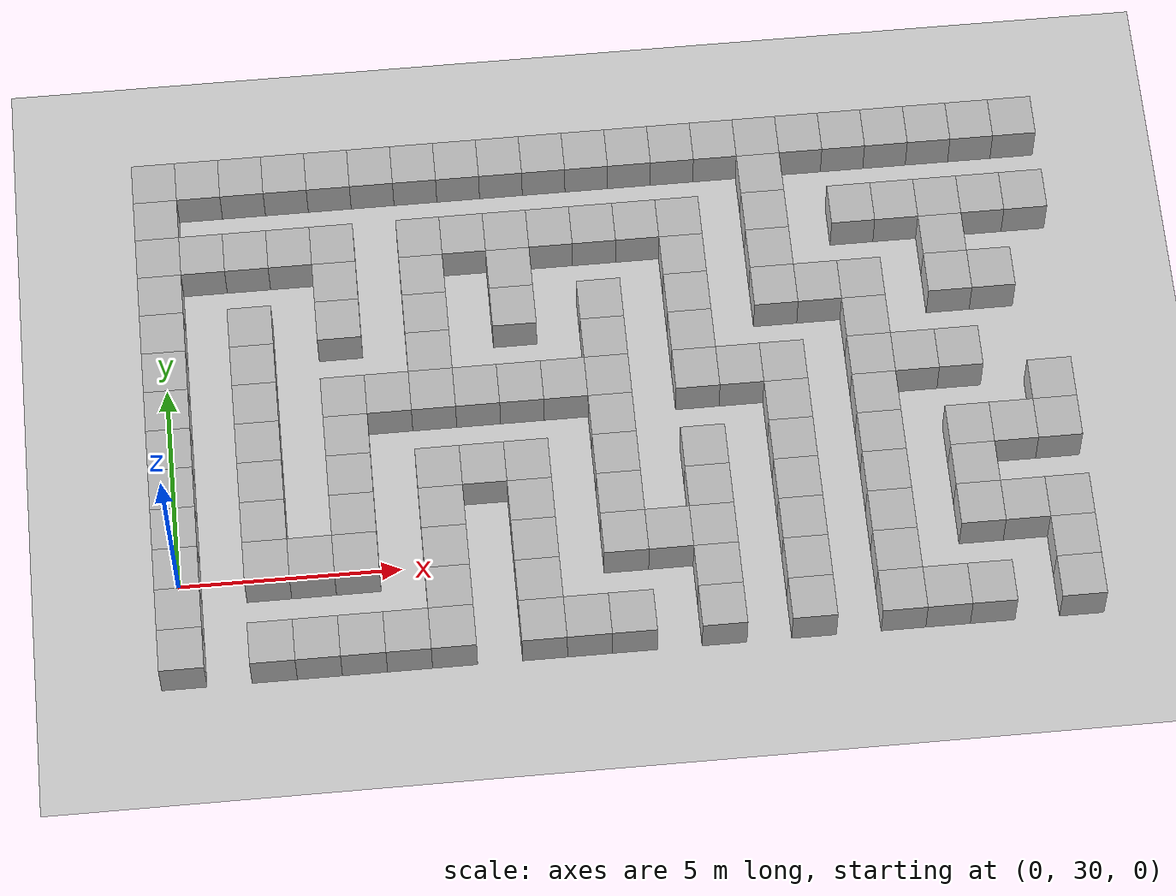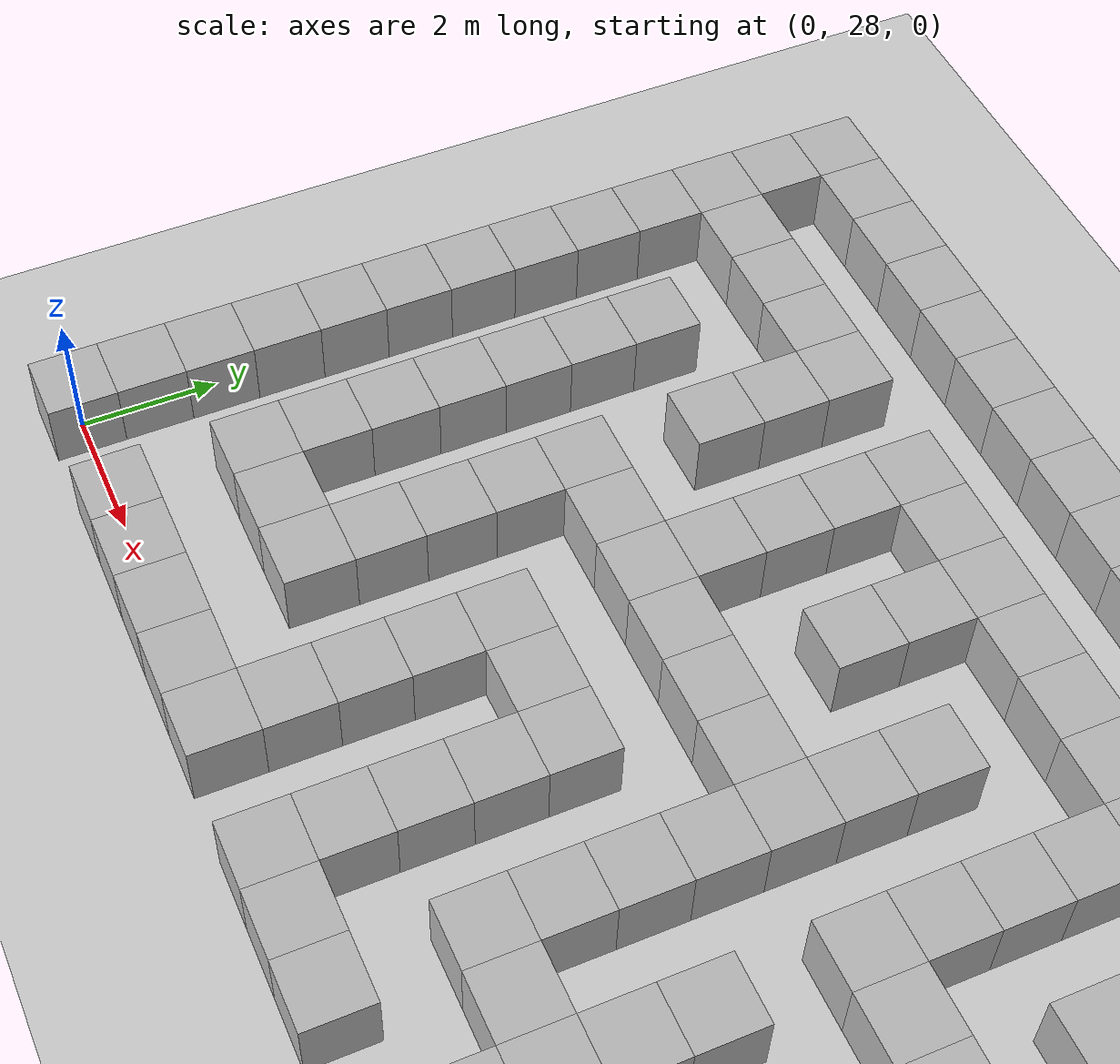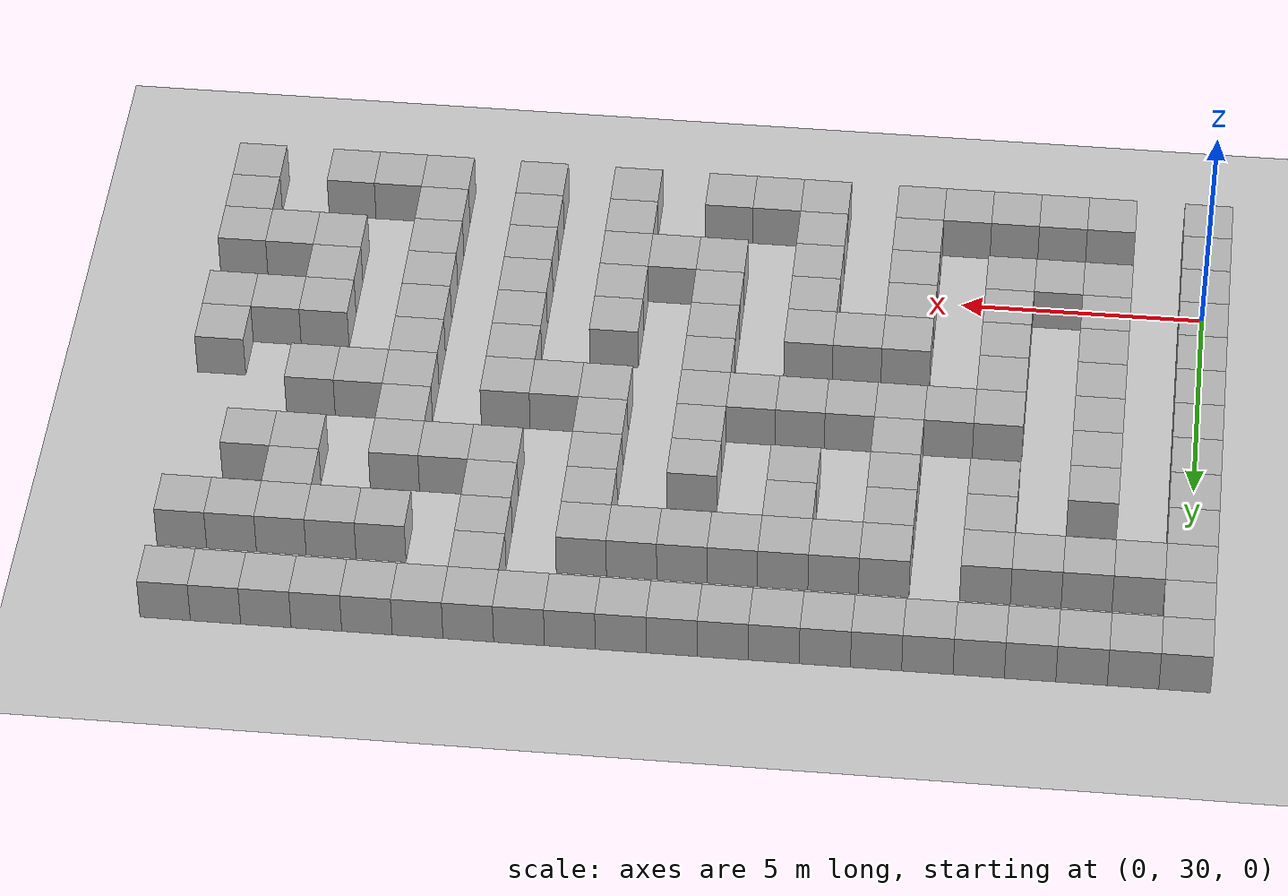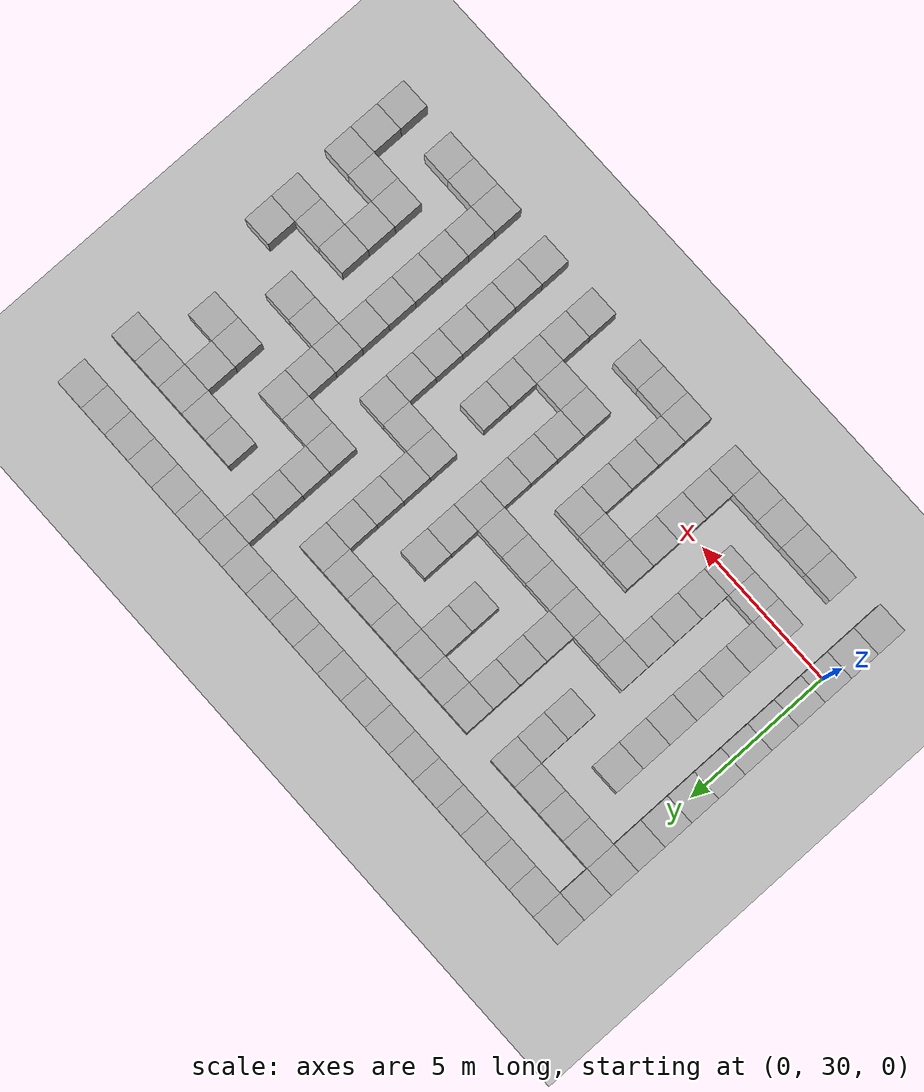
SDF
<sdf version="1.8">
 <world name="custom_maze">
  <model name="ground_plane">
   <static>1</static>
   <link name="link">
    <collision name="collision">
     <geometry><plane><normal>0 0 1</normal><size>100 100</size></plane></geometry>
    </collision>
    <visual name="visual">
     <geometry><plane><normal>0 0 1</normal><size>100 100</size></plane></geometry>
     <material>
      <ambient>0.8 0.8 0.8 1</ambient>
      <diffuse>0.8 0.8 0.8 1</diffuse>
      <specular>0.8 0.8 0.8 1</specular>
     </material>
     <plugin name="__default__" filename="__default__"/>
    </visual>
   </link>
   <plugin name="__default__" filename="__default__"/>
  </model>
  <model name="obstacles">
   <pose>0 0 0.5 0 0 0</pose>
   <static>true</static>
   <link name="wall11">
    <pose>18 30 0 0 0 0</pose>
    <static>true</static>
    <collision name="wall11_collision"><geometry><box><size>1 1 1</size></box></geometry></collision>
    <visual name="wall11_visual"><geometry><box><size>1 1 1</size></box></geometry></visual>
   </link>
   <link name="wall13">
    <pose>10 31 0 0 0 0</pose>
    <static>true</static>
    <collision name="wall13_collision"><geometry><box><size>1 1 1</size></box></geometry></collision>
    <visual name="wall13_visual"><geometry><box><size>1 1 1</size></box></geometry></visual>
   </link>
   <link name="wall17">
    <pose>3 28 0 0 0 0</pose>
    <static>true</static>
    <collision name="wall17_collision"><geometry><box><size>1 1 1</size></box></geometry></collision>
    <visual name="wall17_visual"><geometry><box><size>1 1 1</size></box></geometry></visual>
   </link>
   <link name="wall18">
    <pose>14 37 0 0 0 0</pose>
    <static>true</static>
    <collision name="wall18_collision"><geometry><box><size>1 1 1</size></box></geometry></collision>
    <visual name="wall18_visual"><geometry><box><size>1 1 1</size></box></geometry></visual>
   </link>
   <link name="wall24">
    <pose>6 38 0 0 0 0</pose>
    <static>true</static>
    <collision name="wall24_collision"><geometry><box><size>1 1 1</size></box></geometry></collision>
    <visual name="wall24_visual"><geometry><box><size>1 1 1</size></box></geometry></visual>
   </link>
   <link name="wall29">
    <pose>2 40 0 0 0 0</pose>
    <static>true</static>
    <collision name="wall29_collision"><geometry><box><size>1 1 1</size></box></geometry></collision>
    <visual name="wall29_visual"><geometry><box><size>1 1 1</size></box></geometry></visual>
   </link>
   <link name="wall39">
    <pose>17 38 0 0 0 0</pose>
    <static>true</static>
    <collision name="wall39_collision"><geometry><box><size>1 1 1</size></box></geometry></collision>
    <visual name="wall39_visual"><geometry><box><size>1 1 1</size></box></geometry></visual>
   </link>
   <link name="wall40">
    <pose>9 34 0 0 0 0</pose>
    <static>true</static>
    <collision name="wall40_collision"><geometry><box><size>1 1 1</size></box></geometry></collision>
    <visual name="wall40_visual"><geometry><box><size>1 1 1</size></box></geometry></visual>
   </link>
   <link name="wall43">
    <pose>6 28 0 0 0 0</pose>
    <static>true</static>
    <collision name="wall43_collision"><geometry><box><size>1 1 1</size></box></geometry></collision>
    <visual name="wall43_visual"><geometry><box><size>1 1 1</size></box></geometry></visual>
   </link>
   <link name="wall47">
    <pose>2 30 0 0 0 0</pose>
    <static>true</static>
    <collision name="wall47_collision"><geometry><box><size>1 1 1</size></box></geometry></collision>
    <visual name="wall47_visual"><geometry><box><size>1 1 1</size></box></geometry></visual>
   </link>
   <link name="wall52">
    <pose>5 40 0 0 0 0</pose>
    <static>true</static>
    <collision name="wall52_collision"><geometry><box><size>1 1 1</size></box></geometry></collision>
    <visual name="wall52_visual"><geometry><box><size>1 1 1</size></box></geometry></visual>
   </link>
   <link name="wall60">
    <pose>17 28 0 0 0 0</pose>
    <static>true</static>
    <collision name="wall60_collision"><geometry><box><size>1 1 1</size></box></geometry></collision>
    <visual name="wall60_visual"><geometry><box><size>1 1 1</size></box></geometry></visual>
   </link>
   <link name="wall64">
    <pose>20 38 0 0 0 0</pose>
    <static>true</static>
    <collision name="wall64_collision"><geometry><box><size>1 1 1</size></box></geometry></collision>
    <visual name="wall64_visual"><geometry><box><size>1 1 1</size></box></geometry></visual>
   </link>
   <link name="wall65">
    <pose>12 34 0 0 0 0</pose>
    <static>true</static>
    <collision name="wall65_collision"><geometry><box><size>1 1 1</size></box></geometry></collision>
    <visual name="wall65_visual"><geometry><box><size>1 1 1</size></box></geometry></visual>
   </link>
   <link name="wall66">
    <pose>4 30 0 0 0 0</pose>
    <static>true</static>
    <collision name="wall66_collision"><geometry><box><size>1 1 1</size></box></geometry></collision>
    <visual name="wall66_visual"><geometry><box><size>1 1 1</size></box></geometry></visual>
   </link>
   <link name="wall70">
    <pose>16 40 0 0 0 0</pose>
    <static>true</static>
    <collision name="wall70_collision"><geometry><box><size>1 1 1</size></box></geometry></collision>
    <visual name="wall70_visual"><geometry><box><size>1 1 1</size></box></geometry></visual>
   </link>
   <link name="wall73">
    <pose>0 37 0 0 0 0</pose>
    <static>true</static>
    <collision name="wall73_collision"><geometry><box><size>1 1 1</size></box></geometry></collision>
    <visual name="wall73_visual"><geometry><box><size>1 1 1</size></box></geometry></visual>
   </link>
   <link name="wall79">
    <pose>20 28 0 0 0 0</pose>
    <static>true</static>
    <collision name="wall79_collision"><geometry><box><size>1 1 1</size></box></geometry></collision>
    <visual name="wall79_visual"><geometry><box><size>1 1 1</size></box></geometry></visual>
   </link>
   <link name="wall83">
    <pose>16 30 0 0 0 0</pose>
    <static>true</static>
    <collision name="wall83_collision"><geometry><box><size>1 1 1</size></box></geometry></collision>
    <visual name="wall83_visual"><geometry><box><size>1 1 1</size></box></geometry></visual>
   </link>
   <link name="wall85">
    <pose>8 31 0 0 0 0</pose>
    <static>true</static>
    <collision name="wall85_collision"><geometry><box><size>1 1 1</size></box></geometry></collision>
    <visual name="wall85_visual"><geometry><box><size>1 1 1</size></box></geometry></visual>
   </link>
   <link name="wall87">
    <pose>19 40 0 0 0 0</pose>
    <static>true</static>
    <collision name="wall87_collision"><geometry><box><size>1 1 1</size></box></geometry></collision>
    <visual name="wall87_visual"><geometry><box><size>1 1 1</size></box></geometry></visual>
   </link>
   <link name="wall89">
    <pose>12 37 0 0 0 0</pose>
    <static>true</static>
    <collision name="wall89_collision"><geometry><box><size>1 1 1</size></box></geometry></collision>
    <visual name="wall89_visual"><geometry><box><size>1 1 1</size></box></geometry></visual>
   </link>
   <link name="wall91">
    <pose>4 33 0 0 0 0</pose>
    <static>true</static>
    <collision name="wall91_collision"><geometry><box><size>1 1 1</size></box></geometry></collision>
    <visual name="wall91_visual"><geometry><box><size>1 1 1</size></box></geometry></visual>
   </link>
   <link name="wall98">
    <pose>0 40 0 0 0 0</pose>
    <static>true</static>
    <collision name="wall98_collision"><geometry><box><size>1 1 1</size></box></geometry></collision>
    <visual name="wall98_visual"><geometry><box><size>1 1 1</size></box></geometry></visual>
   </link>
   <link name="wall107">
    <pose>19 30 0 0 0 0</pose>
    <static>true</static>
    <collision name="wall107_collision"><geometry><box><size>1 1 1</size></box></geometry></collision>
    <visual name="wall107_visual"><geometry><box><size>1 1 1</size></box></geometry></visual>
   </link>
   <link name="wall111">
    <pose>14 36 0 0 0 0</pose>
    <static>true</static>
    <collision name="wall111_collision"><geometry><box><size>1 1 1</size></box></geometry></collision>
    <visual name="wall111_visual"><geometry><box><size>1 1 1</size></box></geometry></visual>
   </link>
   <link name="wall119">
    <pose>3 40 0 0 0 0</pose>
    <static>true</static>
    <collision name="wall119_collision"><geometry><box><size>1 1 1</size></box></geometry></collision>
    <visual name="wall119_visual"><geometry><box><size>1 1 1</size></box></geometry></visual>
   </link>
   <link name="wall134">
    <pose>10 33 0 0 0 0</pose>
    <static>true</static>
    <collision name="wall134_collision"><geometry><box><size>1 1 1</size></box></geometry></collision>
    <visual name="wall134_visual"><geometry><box><size>1 1 1</size></box></geometry></visual>
   </link>
   <link name="wall137">
    <pose>3 30 0 0 0 0</pose>
    <static>true</static>
    <collision name="wall137_collision"><geometry><box><size>1 1 1</size></box></geometry></collision>
    <visual name="wall137_visual"><geometry><box><size>1 1 1</size></box></geometry></visual>
   </link>
   <link name="wall141">
    <pose>6 40 0 0 0 0</pose>
    <static>true</static>
    <collision name="wall141_collision"><geometry><box><size>1 1 1</size></box></geometry></collision>
    <visual name="wall141_visual"><geometry><box><size>1 1 1</size></box></geometry></visual>
   </link>
   <link name="wall153">
    <pose>13 34 0 0 0 0</pose>
    <static>true</static>
    <collision name="wall153_collision"><geometry><box><size>1 1 1</size></box></geometry></collision>
    <visual name="wall153_visual"><geometry><box><size>1 1 1</size></box></geometry></visual>
   </link>
   <link name="wall155">
    <pose>17 40 0 0 0 0</pose>
    <static>true</static>
    <collision name="wall155_collision"><geometry><box><size>1 1 1</size></box></geometry></collision>
    <visual name="wall155_visual"><geometry><box><size>1 1 1</size></box></geometry></visual>
   </link>
   <link name="wall158">
    <pose>6 30 0 0 0 0</pose>
    <static>true</static>
    <collision name="wall158_collision"><geometry><box><size>1 1 1</size></box></geometry></collision>
    <visual name="wall158_visual"><geometry><box><size>1 1 1</size></box></geometry></visual>
   </link>
   <link name="wall171">
    <pose>16 29 0 0 0 0</pose>
    <static>true</static>
    <collision name="wall171_collision"><geometry><box><size>1 1 1</size></box></geometry></collision>
    <visual name="wall171_visual"><geometry><box><size>1 1 1</size></box></geometry></visual>
   </link>
   <link name="wall177">
    <pose>20 40 0 0 0 0</pose>
    <static>true</static>
    <collision name="wall177_collision"><geometry><box><size>1 1 1</size></box></geometry></collision>
    <visual name="wall177_visual"><geometry><box><size>1 1 1</size></box></geometry></visual>
   </link>
   <link name="wall178">
    <pose>12 36 0 0 0 0</pose>
    <static>true</static>
    <collision name="wall178_collision"><geometry><box><size>1 1 1</size></box></geometry></collision>
    <visual name="wall178_visual"><geometry><box><size>1 1 1</size></box></geometry></visual>
   </link>
   <link name="wall179">
    <pose>4 32 0 0 0 0</pose>
    <static>true</static>
    <collision name="wall179_collision"><geometry><box><size>1 1 1</size></box></geometry></collision>
    <visual name="wall179_visual"><geometry><box><size>1 1 1</size></box></geometry></visual>
   </link>
   <link name="wall185">
    <pose>0 39 0 0 0 0</pose>
    <static>true</static>
    <collision name="wall185_collision"><geometry><box><size>1 1 1</size></box></geometry></collision>
    <visual name="wall185_visual"><geometry><box><size>1 1 1</size></box></geometry></visual>
   </link>
   <link name="wall192">
    <pose>20 30 0 0 0 0</pose>
    <static>true</static>
    <collision name="wall192_collision"><geometry><box><size>1 1 1</size></box></geometry></collision>
    <visual name="wall192_visual"><geometry><box><size>1 1 1</size></box></geometry></visual>
   </link>
   <link name="wall198">
    <pose>15 36 0 0 0 0</pose>
    <static>true</static>
    <collision name="wall198_collision"><geometry><box><size>1 1 1</size></box></geometry></collision>
    <visual name="wall198_visual"><geometry><box><size>1 1 1</size></box></geometry></visual>
   </link>
   <link name="wall199">
    <pose>7 32 0 0 0 0</pose>
    <static>true</static>
    <collision name="wall199_collision"><geometry><box><size>1 1 1</size></box></geometry></collision>
    <visual name="wall199_visual"><geometry><box><size>1 1 1</size></box></geometry></visual>
   </link>
   <link name="wall201">
    <pose>0 29 0 0 0 0</pose>
    <static>true</static>
    <collision name="wall201_collision"><geometry><box><size>1 1 1</size></box></geometry></collision>
    <visual name="wall201_visual"><geometry><box><size>1 1 1</size></box></geometry></visual>
   </link>
   <link name="wall202">
    <pose>11 38 0 0 0 0</pose>
    <static>true</static>
    <collision name="wall202_collision"><geometry><box><size>1 1 1</size></box></geometry></collision>
    <visual name="wall202_visual"><geometry><box><size>1 1 1</size></box></geometry></visual>
   </link>
   <link name="wall216">
    <pose>18 31 0 0 0 0</pose>
    <static>true</static>
    <collision name="wall216_collision"><geometry><box><size>1 1 1</size></box></geometry></collision>
    <visual name="wall216_visual"><geometry><box><size>1 1 1</size></box></geometry></visual>
   </link>
   <link name="wall219">
    <pose>14 38 0 0 0 0</pose>
    <static>true</static>
    <collision name="wall219_collision"><geometry><box><size>1 1 1</size></box></geometry></collision>
    <visual name="wall219_visual"><geometry><box><size>1 1 1</size></box></geometry></visual>
   </link>
   <link name="wall238">
    <pose>14 28 0 0 0 0</pose>
    <static>true</static>
    <collision name="wall238_collision"><geometry><box><size>1 1 1</size></box></geometry></collision>
    <visual name="wall238_visual"><geometry><box><size>1 1 1</size></box></geometry></visual>
   </link>
   <link name="wall241">
    <pose>6 29 0 0 0 0</pose>
    <static>true</static>
    <collision name="wall241_collision"><geometry><box><size>1 1 1</size></box></geometry></collision>
    <visual name="wall241_visual"><geometry><box><size>1 1 1</size></box></geometry></visual>
   </link>
   <link name="wall242">
    <pose>10 35 0 0 0 0</pose>
    <static>true</static>
    <collision name="wall242_collision"><geometry><box><size>1 1 1</size></box></geometry></collision>
    <visual name="wall242_visual"><geometry><box><size>1 1 1</size></box></geometry></visual>
   </link>
   <link name="wall243">
    <pose>2 31 0 0 0 0</pose>
    <static>true</static>
    <collision name="wall243_collision"><geometry><box><size>1 1 1</size></box></geometry></collision>
    <visual name="wall243_visual"><geometry><box><size>1 1 1</size></box></geometry></visual>
   </link>
   <link name="wall262">
    <pose>9 38 0 0 0 0</pose>
    <static>true</static>
    <collision name="wall262_collision"><geometry><box><size>1 1 1</size></box></geometry></collision>
    <visual name="wall262_visual"><geometry><box><size>1 1 1</size></box></geometry></visual>
   </link>
   <link name="wall265">
    <pose>6 32 0 0 0 0</pose>
    <static>true</static>
    <collision name="wall265_collision"><geometry><box><size>1 1 1</size></box></geometry></collision>
    <visual name="wall265_visual"><geometry><box><size>1 1 1</size></box></geometry></visual>
   </link>
   <link name="wall270">
    <pose>1 38 0 0 0 0</pose>
    <static>true</static>
    <collision name="wall270_collision"><geometry><box><size>1 1 1</size></box></geometry></collision>
    <visual name="wall270_visual"><geometry><box><size>1 1 1</size></box></geometry></visual>
   </link>
   <link name="wall275">
    <pose>20 29 0 0 0 0</pose>
    <static>true</static>
    <collision name="wall275_collision"><geometry><box><size>1 1 1</size></box></geometry></collision>
    <visual name="wall275_visual"><geometry><box><size>1 1 1</size></box></geometry></visual>
   </link>
   <link name="wall280">
    <pose>16 31 0 0 0 0</pose>
    <static>true</static>
    <collision name="wall280_collision"><geometry><box><size>1 1 1</size></box></geometry></collision>
    <visual name="wall280_visual"><geometry><box><size>1 1 1</size></box></geometry></visual>
   </link>
   <link name="wall282">
    <pose>9 28 0 0 0 0</pose>
    <static>true</static>
    <collision name="wall282_collision"><geometry><box><size>1 1 1</size></box></geometry></collision>
    <visual name="wall282_visual"><geometry><box><size>1 1 1</size></box></geometry></visual>
   </link>
   <link name="wall284">
    <pose>8 32 0 0 0 0</pose>
    <static>true</static>
    <collision name="wall284_collision"><geometry><box><size>1 1 1</size></box></geometry></collision>
    <visual name="wall284_visual"><geometry><box><size>1 1 1</size></box></geometry></visual>
   </link>
   <link name="wall285">
    <pose>12 38 0 0 0 0</pose>
    <static>true</static>
    <collision name="wall285_collision"><geometry><box><size>1 1 1</size></box></geometry></collision>
    <visual name="wall285_visual"><geometry><box><size>1 1 1</size></box></geometry></visual>
   </link>
   <link name="wall286">
    <pose>4 34 0 0 0 0</pose>
    <static>true</static>
    <collision name="wall286_collision"><geometry><box><size>1 1 1</size></box></geometry></collision>
    <visual name="wall286_visual"><geometry><box><size>1 1 1</size></box></geometry></visual>
   </link>
   <link name="wall302">
    <pose>20 32 0 0 0 0</pose>
    <static>true</static>
    <collision name="wall302_collision"><geometry><box><size>1 1 1</size></box></geometry></collision>
    <visual name="wall302_visual"><geometry><box><size>1 1 1</size></box></geometry></visual>
   </link>
   <link name="wall303">
    <pose>12 28 0 0 0 0</pose>
    <static>true</static>
    <collision name="wall303_collision"><geometry><box><size>1 1 1</size></box></geometry></collision>
    <visual name="wall303_visual"><geometry><box><size>1 1 1</size></box></geometry></visual>
   </link>
   <link name="wall308">
    <pose>7 34 0 0 0 0</pose>
    <static>true</static>
    <collision name="wall308_collision"><geometry><box><size>1 1 1</size></box></geometry></collision>
    <visual name="wall308_visual"><geometry><box><size>1 1 1</size></box></geometry></visual>
   </link>
   <link name="wall310">
    <pose>0 31 0 0 0 0</pose>
    <static>true</static>
    <collision name="wall310_collision"><geometry><box><size>1 1 1</size></box></geometry></collision>
    <visual name="wall310_visual"><geometry><box><size>1 1 1</size></box></geometry></visual>
   </link>
   <link name="wall311">
    <pose>11 40 0 0 0 0</pose>
    <static>true</static>
    <collision name="wall311_collision"><geometry><box><size>1 1 1</size></box></geometry></collision>
    <visual name="wall311_visual"><geometry><box><size>1 1 1</size></box></geometry></visual>
   </link>
   <link name="wall328">
    <pose>11 30 0 0 0 0</pose>
    <static>true</static>
    <collision name="wall328_collision"><geometry><box><size>1 1 1</size></box></geometry></collision>
    <visual name="wall328_visual"><geometry><box><size>1 1 1</size></box></geometry></visual>
   </link>
   <link name="wall329">
    <pose>10 34 0 0 0 0</pose>
    <static>true</static>
    <collision name="wall329_collision"><geometry><box><size>1 1 1</size></box></geometry></collision>
    <visual name="wall329_visual"><geometry><box><size>1 1 1</size></box></geometry></visual>
   </link>
   <link name="wall331">
    <pose>14 40 0 0 0 0</pose>
    <static>true</static>
    <collision name="wall331_collision"><geometry><box><size>1 1 1</size></box></geometry></collision>
    <visual name="wall331_visual"><geometry><box><size>1 1 1</size></box></geometry></visual>
   </link>
   <link name="wall347">
    <pose>14 30 0 0 0 0</pose>
    <static>true</static>
    <collision name="wall347_collision"><geometry><box><size>1 1 1</size></box></geometry></collision>
    <visual name="wall347_visual"><geometry><box><size>1 1 1</size></box></geometry></visual>
   </link>
   <link name="wall351">
    <pose>6 31 0 0 0 0</pose>
    <static>true</static>
    <collision name="wall351_collision"><geometry><box><size>1 1 1</size></box></geometry></collision>
    <visual name="wall351_visual"><geometry><box><size>1 1 1</size></box></geometry></visual>
   </link>
   <link name="wall353">
    <pose>2 33 0 0 0 0</pose>
    <static>true</static>
    <collision name="wall353_collision"><geometry><box><size>1 1 1</size></box></geometry></collision>
    <visual name="wall353_visual"><geometry><box><size>1 1 1</size></box></geometry></visual>
   </link>
   <link name="wall372">
    <pose>9 40 0 0 0 0</pose>
    <static>true</static>
    <collision name="wall372_collision"><geometry><box><size>1 1 1</size></box></geometry></collision>
    <visual name="wall372_visual"><geometry><box><size>1 1 1</size></box></geometry></visual>
   </link>
   <link name="wall379">
    <pose>1 40 0 0 0 0</pose>
    <static>true</static>
    <collision name="wall379_collision"><geometry><box><size>1 1 1</size></box></geometry></collision>
    <visual name="wall379_visual"><geometry><box><size>1 1 1</size></box></geometry></visual>
   </link>
   <link name="wall388">
    <pose>16 33 0 0 0 0</pose>
    <static>true</static>
    <collision name="wall388_collision"><geometry><box><size>1 1 1</size></box></geometry></collision>
    <visual name="wall388_visual"><geometry><box><size>1 1 1</size></box></geometry></visual>
   </link>
   <link name="wall389">
    <pose>8 34 0 0 0 0</pose>
    <static>true</static>
    <collision name="wall389_collision"><geometry><box><size>1 1 1</size></box></geometry></collision>
    <visual name="wall389_visual"><geometry><box><size>1 1 1</size></box></geometry></visual>
   </link>
   <link name="wall390">
    <pose>0 30 0 0 0 0</pose>
    <static>true</static>
    <collision name="wall390_collision"><geometry><box><size>1 1 1</size></box></geometry></collision>
    <visual name="wall390_visual"><geometry><box><size>1 1 1</size></box></geometry></visual>
   </link>
   <link name="wall392">
    <pose>12 40 0 0 0 0</pose>
    <static>true</static>
    <collision name="wall392_collision"><geometry><box><size>1 1 1</size></box></geometry></collision>
    <visual name="wall392_visual"><geometry><box><size>1 1 1</size></box></geometry></visual>
   </link>
   <link name="wall393">
    <pose>4 36 0 0 0 0</pose>
    <static>true</static>
    <collision name="wall393_collision"><geometry><box><size>1 1 1</size></box></geometry></collision>
    <visual name="wall393_visual"><geometry><box><size>1 1 1</size></box></geometry></visual>
   </link>
   <link name="wall409">
    <pose>18 32 0 0 0 0</pose>
    <static>true</static>
    <collision name="wall409_collision"><geometry><box><size>1 1 1</size></box></geometry></collision>
    <visual name="wall409_visual"><geometry><box><size>1 1 1</size></box></geometry></visual>
   </link>
   <link name="wall412">
    <pose>12 30 0 0 0 0</pose>
    <static>true</static>
    <collision name="wall412_collision"><geometry><box><size>1 1 1</size></box></geometry></collision>
    <visual name="wall412_visual"><geometry><box><size>1 1 1</size></box></geometry></visual>
   </link>
   <link name="wall416">
    <pose>14 39 0 0 0 0</pose>
    <static>true</static>
    <collision name="wall416_collision"><geometry><box><size>1 1 1</size></box></geometry></collision>
    <visual name="wall416_visual"><geometry><box><size>1 1 1</size></box></geometry></visual>
   </link>
   <link name="wall418">
    <pose>15 40 0 0 0 0</pose>
    <static>true</static>
    <collision name="wall418_collision"><geometry><box><size>1 1 1</size></box></geometry></collision>
    <visual name="wall418_visual"><geometry><box><size>1 1 1</size></box></geometry></visual>
   </link>
   <link name="wall423">
    <pose>8 37 0 0 0 0</pose>
    <static>true</static>
    <collision name="wall423_collision"><geometry><box><size>1 1 1</size></box></geometry></collision>
    <visual name="wall423_visual"><geometry><box><size>1 1 1</size></box></geometry></visual>
   </link>
   <link name="wall424">
    <pose>0 33 0 0 0 0</pose>
    <static>true</static>
    <collision name="wall424_collision"><geometry><box><size>1 1 1</size></box></geometry></collision>
    <visual name="wall424_visual"><geometry><box><size>1 1 1</size></box></geometry></visual>
   </link>
   <link name="wall439">
    <pose>14 29 0 0 0 0</pose>
    <static>true</static>
    <collision name="wall439_collision"><geometry><box><size>1 1 1</size></box></geometry></collision>
    <visual name="wall439_visual"><geometry><box><size>1 1 1</size></box></geometry></visual>
   </link>
   <link name="wall444">
    <pose>10 36 0 0 0 0</pose>
    <static>true</static>
    <collision name="wall444_collision"><geometry><box><size>1 1 1</size></box></geometry></collision>
    <visual name="wall444_visual"><geometry><box><size>1 1 1</size></box></geometry></visual>
   </link>
   <link name="wall445">
    <pose>2 32 0 0 0 0</pose>
    <static>true</static>
    <collision name="wall445_collision"><geometry><box><size>1 1 1</size></box></geometry></collision>
    <visual name="wall445_visual"><geometry><box><size>1 1 1</size></box></geometry></visual>
   </link>
   <link name="wall463">
    <pose>14 32 0 0 0 0</pose>
    <static>true</static>
    <collision name="wall463_collision"><geometry><box><size>1 1 1</size></box></geometry></collision>
    <visual name="wall463_visual"><geometry><box><size>1 1 1</size></box></geometry></visual>
   </link>
   <link name="wall468">
    <pose>2 35 0 0 0 0</pose>
    <static>true</static>
    <collision name="wall468_collision"><geometry><box><size>1 1 1</size></box></geometry></collision>
    <visual name="wall468_visual"><geometry><box><size>1 1 1</size></box></geometry></visual>
   </link>
   <link name="wall481">
    <pose>16 32 0 0 0 0</pose>
    <static>true</static>
    <collision name="wall481_collision"><geometry><box><size>1 1 1</size></box></geometry></collision>
    <visual name="wall481_visual"><geometry><box><size>1 1 1</size></box></geometry></visual>
   </link>
   <link name="wall487">
    <pose>13 40 0 0 0 0</pose>
    <static>true</static>
    <collision name="wall487_collision"><geometry><box><size>1 1 1</size></box></geometry></collision>
    <visual name="wall487_visual"><geometry><box><size>1 1 1</size></box></geometry></visual>
   </link>
   <link name="wall504">
    <pose>19 32 0 0 0 0</pose>
    <static>true</static>
    <collision name="wall504_collision"><geometry><box><size>1 1 1</size></box></geometry></collision>
    <visual name="wall504_visual"><geometry><box><size>1 1 1</size></box></geometry></visual>
   </link>
   <link name="wall505">
    <pose>20 33 0 0 0 0</pose>
    <static>true</static>
    <collision name="wall505_collision"><geometry><box><size>1 1 1</size></box></geometry></collision>
    <visual name="wall505_visual"><geometry><box><size>1 1 1</size></box></geometry></visual>
   </link>
   <link name="wall506">
    <pose>12 29 0 0 0 0</pose>
    <static>true</static>
    <collision name="wall506_collision"><geometry><box><size>1 1 1</size></box></geometry></collision>
    <visual name="wall506_visual"><geometry><box><size>1 1 1</size></box></geometry></visual>
   </link>
   <link name="wall509">
    <pose>16 35 0 0 0 0</pose>
    <static>true</static>
    <collision name="wall509_collision"><geometry><box><size>1 1 1</size></box></geometry></collision>
    <visual name="wall509_visual"><geometry><box><size>1 1 1</size></box></geometry></visual>
   </link>
   <link name="wall513">
    <pose>8 36 0 0 0 0</pose>
    <static>true</static>
    <collision name="wall513_collision"><geometry><box><size>1 1 1</size></box></geometry></collision>
    <visual name="wall513_visual"><geometry><box><size>1 1 1</size></box></geometry></visual>
   </link>
   <link name="wall514">
    <pose>0 32 0 0 0 0</pose>
    <static>true</static>
    <collision name="wall514_collision"><geometry><box><size>1 1 1</size></box></geometry></collision>
    <visual name="wall514_visual"><geometry><box><size>1 1 1</size></box></geometry></visual>
   </link>
   <link name="wall517">
    <pose>4 38 0 0 0 0</pose>
    <static>true</static>
    <collision name="wall517_collision"><geometry><box><size>1 1 1</size></box></geometry></collision>
    <visual name="wall517_visual"><geometry><box><size>1 1 1</size></box></geometry></visual>
   </link>
   <link name="wall526">
    <pose>18 34 0 0 0 0</pose>
    <static>true</static>
    <collision name="wall526_collision"><geometry><box><size>1 1 1</size></box></geometry></collision>
    <visual name="wall526_visual"><geometry><box><size>1 1 1</size></box></geometry></visual>
   </link>
   <link name="wall532">
    <pose>4 28 0 0 0 0</pose>
    <static>true</static>
    <collision name="wall532_collision"><geometry><box><size>1 1 1</size></box></geometry></collision>
    <visual name="wall532_visual"><geometry><box><size>1 1 1</size></box></geometry></visual>
   </link>
   <link name="wall537">
    <pose>7 38 0 0 0 0</pose>
    <static>true</static>
    <collision name="wall537_collision"><geometry><box><size>1 1 1</size></box></geometry></collision>
    <visual name="wall537_visual"><geometry><box><size>1 1 1</size></box></geometry></visual>
   </link>
   <link name="wall540">
    <pose>0 35 0 0 0 0</pose>
    <static>true</static>
    <collision name="wall540_collision"><geometry><box><size>1 1 1</size></box></geometry></collision>
    <visual name="wall540_visual"><geometry><box><size>1 1 1</size></box></geometry></visual>
   </link>
   <link name="wall553">
    <pose>14 31 0 0 0 0</pose>
    <static>true</static>
    <collision name="wall553_collision"><geometry><box><size>1 1 1</size></box></geometry></collision>
    <visual name="wall553_visual"><geometry><box><size>1 1 1</size></box></geometry></visual>
   </link>
   <link name="wall557">
    <pose>18 37 0 0 0 0</pose>
    <static>true</static>
    <collision name="wall557_collision"><geometry><box><size>1 1 1</size></box></geometry></collision>
    <visual name="wall557_visual"><geometry><box><size>1 1 1</size></box></geometry></visual>
   </link>
   <link name="wall561">
    <pose>10 38 0 0 0 0</pose>
    <static>true</static>
    <collision name="wall561_collision"><geometry><box><size>1 1 1</size></box></geometry></collision>
    <visual name="wall561_visual"><geometry><box><size>1 1 1</size></box></geometry></visual>
   </link>
   <link name="wall562">
    <pose>2 34 0 0 0 0</pose>
    <static>true</static>
    <collision name="wall562_collision"><geometry><box><size>1 1 1</size></box></geometry></collision>
    <visual name="wall562_visual"><geometry><box><size>1 1 1</size></box></geometry></visual>
   </link>
   <link name="wall575">
    <pose>10 28 0 0 0 0</pose>
    <static>true</static>
    <collision name="wall575_collision"><geometry><box><size>1 1 1</size></box></geometry></collision>
    <visual name="wall575_visual"><geometry><box><size>1 1 1</size></box></geometry></visual>
   </link>
   <link name="wall580">
    <pose>5 34 0 0 0 0</pose>
    <static>true</static>
    <collision name="wall580_collision"><geometry><box><size>1 1 1</size></box></geometry></collision>
    <visual name="wall580_visual"><geometry><box><size>1 1 1</size></box></geometry></visual>
   </link>
   <link name="wall582">
    <pose>6 35 0 0 0 0</pose>
    <static>true</static>
    <collision name="wall582_collision"><geometry><box><size>1 1 1</size></box></geometry></collision>
    <visual name="wall582_visual"><geometry><box><size>1 1 1</size></box></geometry></visual>
   </link>
   <link name="wall592">
    <pose>16 34 0 0 0 0</pose>
    <static>true</static>
    <collision name="wall592_collision"><geometry><box><size>1 1 1</size></box></geometry></collision>
    <visual name="wall592_visual"><geometry><box><size>1 1 1</size></box></geometry></visual>
   </link>
   <link name="wall598">
    <pose>4 37 0 0 0 0</pose>
    <static>true</static>
    <collision name="wall598_collision"><geometry><box><size>1 1 1</size></box></geometry></collision>
    <visual name="wall598_visual"><geometry><box><size>1 1 1</size></box></geometry></visual>
   </link>
   <link name="wall615">
    <pose>12 31 0 0 0 0</pose>
    <static>true</static>
    <collision name="wall615_collision"><geometry><box><size>1 1 1</size></box></geometry></collision>
    <visual name="wall615_visual"><geometry><box><size>1 1 1</size></box></geometry></visual>
   </link>
   <link name="wall620">
    <pose>8 38 0 0 0 0</pose>
    <static>true</static>
    <collision name="wall620_collision"><geometry><box><size>1 1 1</size></box></geometry></collision>
    <visual name="wall620_visual"><geometry><box><size>1 1 1</size></box></geometry></visual>
   </link>
   <link name="wall621">
    <pose>0 34 0 0 0 0</pose>
    <static>true</static>
    <collision name="wall621_collision"><geometry><box><size>1 1 1</size></box></geometry></collision>
    <visual name="wall621_visual"><geometry><box><size>1 1 1</size></box></geometry></visual>
   </link>
   <link name="wall626">
    <pose>4 40 0 0 0 0</pose>
    <static>true</static>
    <collision name="wall626_collision"><geometry><box><size>1 1 1</size></box></geometry></collision>
    <visual name="wall626_visual"><geometry><box><size>1 1 1</size></box></geometry></visual>
   </link>
   <link name="wall638">
    <pose>18 36 0 0 0 0</pose>
    <static>true</static>
    <collision name="wall638_collision"><geometry><box><size>1 1 1</size></box></geometry></collision>
    <visual name="wall638_visual"><geometry><box><size>1 1 1</size></box></geometry></visual>
   </link>
   <link name="wall640">
    <pose>8 28 0 0 0 0</pose>
    <static>true</static>
    <collision name="wall640_collision"><geometry><box><size>1 1 1</size></box></geometry></collision>
    <visual name="wall640_visual"><geometry><box><size>1 1 1</size></box></geometry></visual>
   </link>
   <link name="wall649">
    <pose>7 40 0 0 0 0</pose>
    <static>true</static>
    <collision name="wall649_collision"><geometry><box><size>1 1 1</size></box></geometry></collision>
    <visual name="wall649_visual"><geometry><box><size>1 1 1</size></box></geometry></visual>
   </link>
   <link name="wall667">
    <pose>14 33 0 0 0 0</pose>
    <static>true</static>
    <collision name="wall667_collision"><geometry><box><size>1 1 1</size></box></geometry></collision>
    <visual name="wall667_visual"><geometry><box><size>1 1 1</size></box></geometry></visual>
   </link>
   <link name="wall671">
    <pose>6 34 0 0 0 0</pose>
    <static>true</static>
    <collision name="wall671_collision"><geometry><box><size>1 1 1</size></box></geometry></collision>
    <visual name="wall671_visual"><geometry><box><size>1 1 1</size></box></geometry></visual>
   </link>
   <link name="wall675">
    <pose>10 40 0 0 0 0</pose>
    <static>true</static>
    <collision name="wall675_collision"><geometry><box><size>1 1 1</size></box></geometry></collision>
    <visual name="wall675_visual"><geometry><box><size>1 1 1</size></box></geometry></visual>
   </link>
   <link name="wall676">
    <pose>2 36 0 0 0 0</pose>
    <static>true</static>
    <collision name="wall676_collision"><geometry><box><size>1 1 1</size></box></geometry></collision>
    <visual name="wall676_visual"><geometry><box><size>1 1 1</size></box></geometry></visual>
   </link>
   <link name="wall689">
    <pose>17 34 0 0 0 0</pose>
    <static>true</static>
    <collision name="wall689_collision"><geometry><box><size>1 1 1</size></box></geometry></collision>
    <visual name="wall689_visual"><geometry><box><size>1 1 1</size></box></geometry></visual>
   </link>
   <link name="wall694">
    <pose>10 30 0 0 0 0</pose>
    <static>true</static>
    <collision name="wall694_collision"><geometry><box><size>1 1 1</size></box></geometry></collision>
    <visual name="wall694_visual"><geometry><box><size>1 1 1</size></box></geometry></visual>
   </link>
   <link name="wall701">
    <pose>6 37 0 0 0 0</pose>
    <static>true</static>
    <collision name="wall701_collision"><geometry><box><size>1 1 1</size></box></geometry></collision>
    <visual name="wall701_visual"><geometry><box><size>1 1 1</size></box></geometry></visual>
   </link>
   <link name="wall715">
    <pose>16 36 0 0 0 0</pose>
    <static>true</static>
    <collision name="wall715_collision"><geometry><box><size>1 1 1</size></box></geometry></collision>
    <visual name="wall715_visual"><geometry><box><size>1 1 1</size></box></geometry></visual>
   </link>
   <link name="wall731">
    <pose>19 36 0 0 0 0</pose>
    <static>true</static>
    <collision name="wall731_collision"><geometry><box><size>1 1 1</size></box></geometry></collision>
    <visual name="wall731_visual"><geometry><box><size>1 1 1</size></box></geometry></visual>
   </link>
   <link name="wall739">
    <pose>8 40 0 0 0 0</pose>
    <static>true</static>
    <collision name="wall739_collision"><geometry><box><size>1 1 1</size></box></geometry></collision>
    <visual name="wall739_visual"><geometry><box><size>1 1 1</size></box></geometry></visual>
   </link>
   <link name="wall740">
    <pose>0 36 0 0 0 0</pose>
    <static>true</static>
    <collision name="wall740_collision"><geometry><box><size>1 1 1</size></box></geometry></collision>
    <visual name="wall740_visual"><geometry><box><size>1 1 1</size></box></geometry></visual>
   </link>
   <link name="wall759">
    <pose>18 38 0 0 0 0</pose>
    <static>true</static>
    <collision name="wall759_collision"><geometry><box><size>1 1 1</size></box></geometry></collision>
    <visual name="wall759_visual"><geometry><box><size>1 1 1</size></box></geometry></visual>
   </link>
   <link name="wall761">
    <pose>8 30 0 0 0 0</pose>
    <static>true</static>
    <collision name="wall761_collision"><geometry><box><size>1 1 1</size></box></geometry></collision>
    <visual name="wall761_visual"><geometry><box><size>1 1 1</size></box></geometry></visual>
   </link>
   <link name="wall779">
    <pose>18 28 0 0 0 0</pose>
    <static>true</static>
    <collision name="wall779_collision"><geometry><box><size>1 1 1</size></box></geometry></collision>
    <visual name="wall779_visual"><geometry><box><size>1 1 1</size></box></geometry></visual>
   </link>
   <link name="wall791">
    <pose>6 36 0 0 0 0</pose>
    <static>true</static>
    <collision name="wall791_collision"><geometry><box><size>1 1 1</size></box></geometry></collision>
    <visual name="wall791_visual"><geometry><box><size>1 1 1</size></box></geometry></visual>
   </link>
   <link name="wall793">
    <pose>2 38 0 0 0 0</pose>
    <static>true</static>
    <collision name="wall793_collision"><geometry><box><size>1 1 1</size></box></geometry></collision>
    <visual name="wall793_visual"><geometry><box><size>1 1 1</size></box></geometry></visual>
   </link>
   <link name="wall807">
    <pose>10 32 0 0 0 0</pose>
    <static>true</static>
    <collision name="wall807_collision"><geometry><box><size>1 1 1</size></box></geometry></collision>
    <visual name="wall807_visual"><geometry><box><size>1 1 1</size></box></geometry></visual>
   </link>
   <link name="wall808">
    <pose>2 28 0 0 0 0</pose>
    <static>true</static>
    <collision name="wall808_collision"><geometry><box><size>1 1 1</size></box></geometry></collision>
    <visual name="wall808_visual"><geometry><box><size>1 1 1</size></box></geometry></visual>
   </link>
   <link name="wall825">
    <pose>12 32 0 0 0 0</pose>
    <static>true</static>
    <collision name="wall825_collision"><geometry><box><size>1 1 1</size></box></geometry></collision>
    <visual name="wall825_visual"><geometry><box><size>1 1 1</size></box></geometry></visual>
   </link>
   <link name="wall828">
    <pose>16 38 0 0 0 0</pose>
    <static>true</static>
    <collision name="wall828_collision"><geometry><box><size>1 1 1</size></box></geometry></collision>
    <visual name="wall828_visual"><geometry><box><size>1 1 1</size></box></geometry></visual>
   </link>
   <link name="wall831">
    <pose>5 28 0 0 0 0</pose>
    <static>true</static>
    <collision name="wall831_collision"><geometry><box><size>1 1 1</size></box></geometry></collision>
    <visual name="wall831_visual"><geometry><box><size>1 1 1</size></box></geometry></visual>
   </link>
   <link name="wall841">
    <pose>16 28 0 0 0 0</pose>
    <static>true</static>
    <collision name="wall841_collision"><geometry><box><size>1 1 1</size></box></geometry></collision>
    <visual name="wall841_visual"><geometry><box><size>1 1 1</size></box></geometry></visual>
   </link>
   <link name="wall844">
    <pose>8 29 0 0 0 0</pose>
    <static>true</static>
    <collision name="wall844_collision"><geometry><box><size>1 1 1</size></box></geometry></collision>
    <visual name="wall844_visual"><geometry><box><size>1 1 1</size></box></geometry></visual>
   </link>
   <link name="wall846">
    <pose>19 38 0 0 0 0</pose>
    <static>true</static>
    <collision name="wall846_collision"><geometry><box><size>1 1 1</size></box></geometry></collision>
    <visual name="wall846_visual"><geometry><box><size>1 1 1</size></box></geometry></visual>
   </link>
   <link name="wall849">
    <pose>12 35 0 0 0 0</pose>
    <static>true</static>
    <collision name="wall849_collision"><geometry><box><size>1 1 1</size></box></geometry></collision>
    <visual name="wall849_visual"><geometry><box><size>1 1 1</size></box></geometry></visual>
   </link>
   <link name="wall851">
    <pose>4 31 0 0 0 0</pose>
    <static>true</static>
    <collision name="wall851_collision"><geometry><box><size>1 1 1</size></box></geometry></collision>
    <visual name="wall851_visual"><geometry><box><size>1 1 1</size></box></geometry></visual>
   </link>
   <link name="wall855">
    <pose>0 38 0 0 0 0</pose>
    <static>true</static>
    <collision name="wall855_collision"><geometry><box><size>1 1 1</size></box></geometry></collision>
    <visual name="wall855_visual"><geometry><box><size>1 1 1</size></box></geometry></visual>
   </link>
   <link name="wall870">
    <pose>14 34 0 0 0 0</pose>
    <static>true</static>
    <collision name="wall870_collision"><geometry><box><size>1 1 1</size></box></geometry></collision>
    <visual name="wall870_visual"><geometry><box><size>1 1 1</size></box></geometry></visual>
   </link>
   <link name="wall873">
    <pose>18 40 0 0 0 0</pose>
    <static>true</static>
    <collision name="wall873_collision"><geometry><box><size>1 1 1</size></box></geometry></collision>
    <visual name="wall873_visual"><geometry><box><size>1 1 1</size></box></geometry></visual>
   </link>
   <link name="wall875">
    <pose>0 28 0 0 0 0</pose>
    <static>true</static>
    <collision name="wall875_collision"><geometry><box><size>1 1 1</size></box></geometry></collision>
    <visual name="wall875_visual"><geometry><box><size>1 1 1</size></box></geometry></visual>
   </link>
   <link name="wall880">
    <pose>3 38 0 0 0 0</pose>
    <static>true</static>
    <collision name="wall880_collision"><geometry><box><size>1 1 1</size></box></geometry></collision>
    <visual name="wall880_visual"><geometry><box><size>1 1 1</size></box></geometry></visual>
   </link>
  </model>
 </world>
</sdf>
